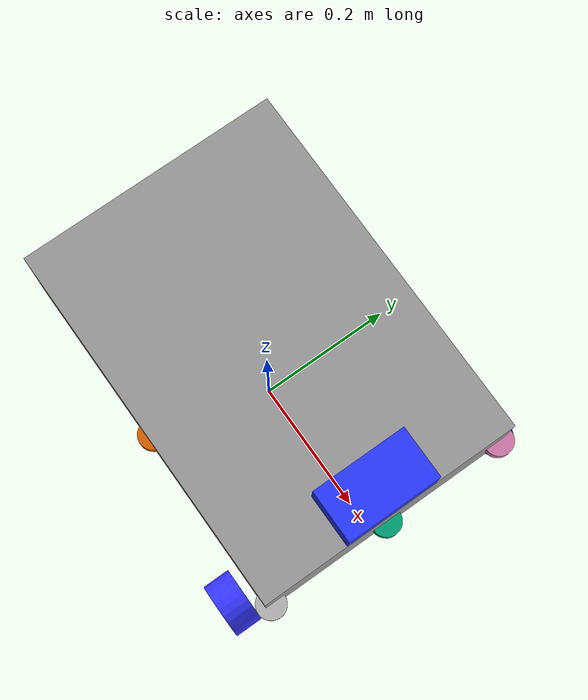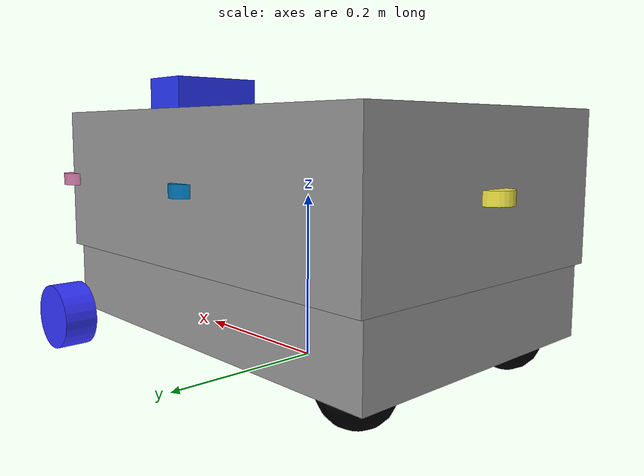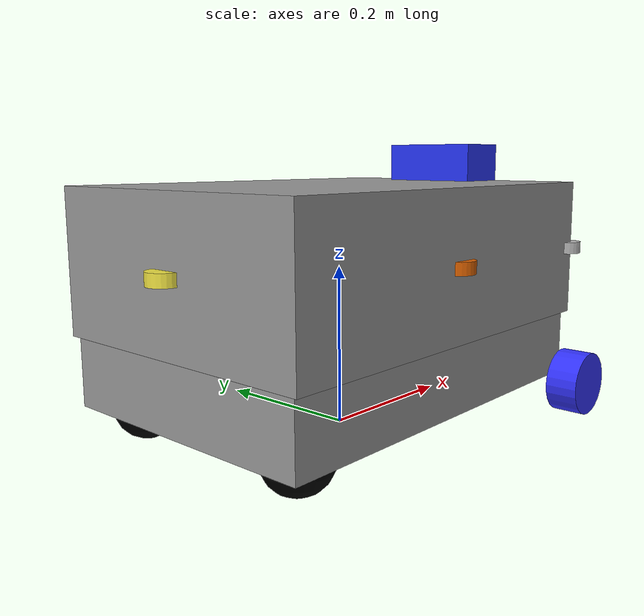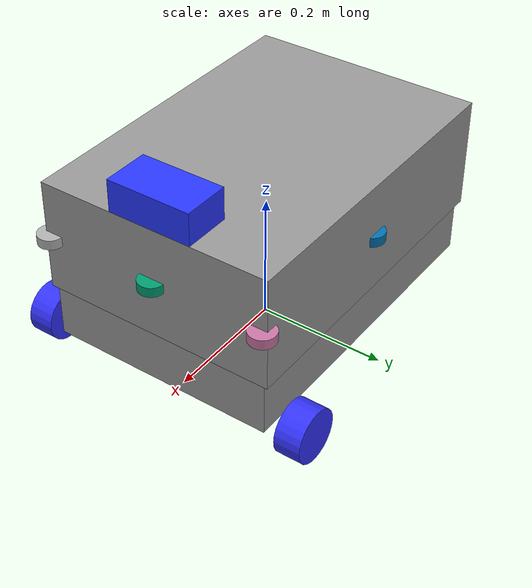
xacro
<?xml version="1.0"?>

<!-- URDF - Descrição do Robô em software para simulações (ou uso real), com uso da câmera como fonte de mapeamento -->

<robot xmlns:xacro="http://www.ros.org/wiki/xacro" name="Marmitron">
    <xacro:include filename="robot_design.xacro"/>
    <xacro:include filename="camera.xacro"/>
    <xacro:include filename="imu.xacro"/>
    <xacro:include filename="gps.xacro"/>
    <xacro:include filename="robot_controller.xacro"/> <!-- O local com as configurações para simulação -->
    <xacro:include filename="ultrasound.xacro"/>

    <xacro:ultrasound_sensor name="ultrasound_frente"   parent="chassiA" xyz="0.2578 0.0 0.0"    rpy="0 0 0"          topic="ultrasound/front"/>
    <xacro:ultrasound_sensor name="ultrasound_tras"     parent="chassiA" xyz="-0.2578 0.0 0.0"   rpy="0 0 ${pi}"      topic="ultrasound/rear"/>
    <xacro:ultrasound_sensor name="ultrasound_esquerda" parent="chassiA" xyz="0.0 0.175 0.0"  rpy="0 0 ${pi/2}"    topic="ultrasound/left"/>
    <xacro:ultrasound_sensor name="ultrasound_direita"  parent="chassiA" xyz="0.0 -0.175 0.0" rpy="0 0 ${-pi/2}"   topic="ultrasound/right"/>
    <xacro:ultrasound_sensor name="ultrasound_fe"       parent="chassiA" xyz="0.2578 0.175 0.0"  rpy="0 0 ${pi/4}"    topic="ultrasound/fe"/>
    <xacro:ultrasound_sensor name="ultrasound_fd"       parent="chassiA" xyz="0.2578 -0.175 0.0" rpy="0 0 ${-pi/4}"   topic="ultrasound/fd"/>

</robot>

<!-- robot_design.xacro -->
<!-- Corpo base do robô, suas juntas e localização de sensores -->
<!-- Dimensões são em metros -->
<robot xmlns:xacro="http://www.ros.org/wiki/xacro">
    <xacro:include filename="materials.xacro"/>
    <xacro:include filename="inertials.xacro"/>

    <!-- Chassi -->
    <xacro:property name="chassiB_x" value="0.507"/>
    <xacro:property name="chassiB_y" value="0.351"/>
    <xacro:property name="chassiB_z" value="0.104"/>    <!-- 0.1 (Parte A) + 0.15 (Parte B) -->

    <xacro:property name="chassiA_x" value="0.516"/>
    <xacro:property name="chassiA_y" value="0.366"/>
    <xacro:property name="chassiA_z" value="0.173"/>

    <!-- Massa do Chassi => (Estimativa Inicial) - 2*(RodasTraseira + RodasApoio) = 6 - 2*(0.055 + 0.05) = 5.79 kg, approx. 5.8 kg -->
    <xacro:property name="chassiB_massa" value="2"/>
    <xacro:property name="chassiA_massa" value="3.8"/>

    <xacro:property name="chassiB_origem" value="0 0 0"/>
    <xacro:property name="chassiB_joint_xyz" value="0 0 0.097"/>

    <xacro:property name="chassiA_origem" value="0 0 0"/>
    <xacro:property name="chassiA_joint_xyz" value="0 0 0.1185"/>

    <!-- Rodas dianteiras -->
    <xacro:property name="roda_raio" value="0.04"/>
    <xacro:property name="roda_comprimento" value="0.04"/>
    <xacro:property name="roda_massa" value="0.5"/>
    <xacro:property name="roda_y" value="0.215"/>
    <xacro:property name="roda_x" value="0.22"/>
    <xacro:property name="roda_z" value="-0.052"/>
    <xacro:property name="roda_mu1" value="0.65"/>
    <xacro:property name="roda_mu2" value="0.65"/>

    <!-- Roda(s) de apoio -->
    <xacro:property name="apoio_raio" value="0.04"/>
    <xacro:property name="apoio_massa" value="0.35"/>
    <xacro:property name="apoio_x" value="-0.2"/>
    <xacro:property name="apoio_y" value="0.125"/>
    <xacro:property name="apoio_z" value="-0.052"/>
    <xacro:property name="apoio_mu1" value="0.2"/>
    <xacro:property name="apoio_mu2" value="0.2"/>

    <link name="base_link"/>

    <!-- Chassi B -->
    <joint name="junta_chassiB" type="fixed">
        <parent link="base_link"/>
        <child link="chassiB"/>
        <origin xyz="${chassiB_joint_xyz}" rpy="0 0 0"/>
    </joint>

    <link name="chassiB">
        <visual>
            <origin xyz="${chassiB_origem}"/>
            <geometry>
                <box size="${chassiB_x} ${chassiB_y} ${chassiB_z}"/>
            </geometry>
            <material name="gray"/>
        </visual>
        <collision>
            <origin xyz="${chassiB_origem}"/>
            <geometry>
                <box size="${chassiB_x} ${chassiB_y} ${chassiB_z}"/>
            </geometry>
        </collision>
        <xacro:inertial_box mass="${chassiB_massa}" x="${chassiB_x}" y="${chassiB_y}" z="${chassiB_z}">
            <origin xyz="${chassiB_origem}" rpy="0 0 0"/>
        </xacro:inertial_box>
    </link>

    <!-- Chassi A -->
    <joint name="junta_chassiA" type="fixed">
        <parent link="chassiB"/>
        <child link="chassiA"/>
        <origin xyz="${chassiA_joint_xyz}" rpy="0 0 0"/>
    </joint>

    <link name="chassiA">
        <visual>
            <origin xyz="${chassiA_origem}"/>
            <geometry>
                <box size="${chassiA_x} ${chassiA_y} ${chassiA_z}"/>
            </geometry>
            <material name="gray"/>
        </visual>
        <collision>
            <origin xyz="${chassiA_origem}"/>
            <geometry>
                <box size="${chassiA_x} ${chassiA_y} ${chassiA_z}"/>
            </geometry>
        </collision>
        <xacro:inertial_box mass="${chassiA_massa}" x="${chassiA_x}" y="${chassiA_y}" z="${chassiA_z}">
            <origin xyz="${chassiA_origem}" rpy="0 0 0"/>
        </xacro:inertial_box>
    </link>

    <!-- Roda Esquerda Dianteira -->
    <joint name="roda_esquerda_joint" type="continuous">
        <parent link="chassiB"/>
        <child link="roda_esquerda"/>
        <origin xyz="${roda_x} ${roda_y} ${roda_z}" rpy="0 0 0"/>
        <axis xyz="0 1 0"/>
    </joint>

    <link name="roda_esquerda">
        <visual>
            <origin xyz="0 0 0" rpy="${pi/2} 0 0"/>
            <geometry><cylinder radius="${roda_raio}" length="${roda_comprimento}"/></geometry>
            <material name="blue"/>
        </visual>
        <collision>
            <origin xyz="0 0 0" rpy="${pi/2} 0 0"/>
            <geometry><cylinder radius="${roda_raio}" length="${roda_comprimento}"/></geometry>
        </collision>
        <xacro:inertial_cylinder mass="${roda_massa}" length="${roda_comprimento}" radius="${roda_raio}">
            <origin xyz="0 0 0" rpy="${pi/2} 0 0"/>
        </xacro:inertial_cylinder>
    </link>
    <gazebo reference="roda_esquerda">
        <mu1>${roda_mu1}</mu1>
        <mu2>${roda_mu2}</mu2>
    </gazebo>

    <!-- Roda Direita Dianteira -->
    <joint name="roda_direita_joint" type="continuous">
        <parent link="chassiB"/>
        <child link="roda_direita"/>
        <origin xyz="${roda_x} -${roda_y} ${roda_z}" rpy="0 0 0"/>
        <axis xyz="0 1 0"/>
    </joint>

    <link name="roda_direita">
        <visual>
            <origin xyz="0 0 0" rpy="${pi/2} 0 0"/>
            <geometry><cylinder radius="${roda_raio}" length="${roda_comprimento}"/></geometry>
            <material name="blue"/>
        </visual>
        <collision>
            <origin xyz="0 0 0" rpy="${pi/2} 0 0"/>
            <geometry><cylinder radius="${roda_raio}" length="${roda_comprimento}"/></geometry>
        </collision>
        <xacro:inertial_cylinder mass="${roda_massa}" length="${roda_comprimento}" radius="${roda_raio}">
            <origin xyz="0 0 0" rpy="${pi/2} 0 0"/>
        </xacro:inertial_cylinder>
    </link>
    <gazebo reference="roda_direita">
        <mu1>${roda_mu1}</mu1>
        <mu2>${roda_mu2}</mu2>
    </gazebo>

    <!-- Rodas de Apoio -->

    <!-- Roda Esquerda -->
    <joint name="roda_boba1_joint" type="fixed">
        <parent link="chassiB"/>
        <child link="roda_boba1"/>
        <origin xyz="${apoio_x} ${apoio_y} ${apoio_z}"/>
    </joint>

    <link name="roda_boba1">

        <visual>
            <geometry>
                <sphere radius="${apoio_raio}"/>
            </geometry>
            <material name="black"/>
        </visual>

        <collision>
            <geometry>
                <sphere radius="${apoio_raio}"/>
            </geometry>
        </collision>

        <xacro:inertial_sphere mass="${apoio_massa}" radius="${apoio_raio}">
            <origin xyz="0 0 0" rpy="0 0 0"/>
        </xacro:inertial_sphere>

    </link>

    <!-- Roda Direita -->
    <joint name="roda_boba2_joint" type="fixed">
        <parent link="chassiB"/>
        <child link="roda_boba2"/>
        <origin xyz="${apoio_x} -${apoio_y} ${apoio_z}"/>
    </joint>

    <link name="roda_boba2">

        <visual>
            <geometry>
                <sphere radius="${apoio_raio}"/>
            </geometry>
            <material name="black"/>
        </visual>

        <collision>
            <geometry>
                <sphere radius="${apoio_raio}"/>
            </geometry>
        </collision>

        <xacro:inertial_sphere mass="${apoio_massa}" radius="${apoio_raio}">
            <origin xyz="0 0 0" rpy="0 0 0"/>
        </xacro:inertial_sphere>

    </link>

    <gazebo reference="roda_boba1">
        <self_collide>false</self_collide>
        <mu1>${apoio_mu1}</mu1>
        <mu2>${apoio_mu2}</mu2>
    </gazebo>

    <gazebo reference="roda_boba2">
        <self_collide>false</self_collide>
        <mu1>${apoio_mu1}</mu1>
        <mu2>${apoio_mu2}</mu2>
    </gazebo>

</robot>

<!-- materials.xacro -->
<!-- Cores para melhor visualização na simulação e no Rviz-->

<robot xmlns:xacro="http://www.ros.org/wiki/xacro">

    <material name="white">
        <color rgba="1 1 1 1"/>
    </material>

    <material name="blue">
        <color rgba="0.2 0.2 1 1"/>
    </material>

    <material name="black">
        <color rgba="0 0 0 1"/>
    </material>

    <material name="red">
        <color rgba="1 0.2 0.2 1"/>
    </material>

    <material name="gray">
        <color rgba="0.6 0.6 0.6 1"/>
    </material>

</robot>

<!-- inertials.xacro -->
<robot xmlns:xacro="http://www.ros.org/wiki/xacro" >

    <!-- Modelos obtidos pelo site https://en.wikipedia.org/wiki/List_of_moments_of_inertia -->

    <xacro:macro name="inertial_sphere" params="mass radius *origin">
        <inertial>
            <xacro:insert_block name="origin"/>
            <mass value="${mass}" />
            <inertia ixx="${(2/5) * mass * (radius*radius)}" ixy="0.0" ixz="0.0"
                    iyy="${(2/5) * mass * (radius*radius)}" iyz="0.0"
                    izz="${(2/5) * mass * (radius*radius)}" />
        </inertial>
    </xacro:macro>

    <xacro:macro name="inertial_box" params="mass x y z *origin">
        <inertial>
            <xacro:insert_block name="origin"/>
            <mass value="${mass}" />
            <inertia ixx="${(1/12) * mass * (y*y+z*z)}" ixy="0.0" ixz="0.0"
                    iyy="${(1/12) * mass * (x*x+z*z)}" iyz="0.0"
                    izz="${(1/12) * mass * (x*x+y*y)}" />
        </inertial>
    </xacro:macro>

    <xacro:macro name="inertial_cylinder" params="mass length radius *origin">
        <inertial>
            <xacro:insert_block name="origin"/>
            <mass value="${mass}" />
            <inertia ixx="${(1/12) * mass * (3*radius*radius + length*length)}" ixy="0.0" ixz="0.0"
                    iyy="${(1/12) * mass * (3*radius*radius + length*length)}" iyz="0.0"
                    izz="${(1/2) * mass * (radius*radius)}" />
        </inertial>
    </xacro:macro>
</robot>

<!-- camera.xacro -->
<robot xmlns:xacro="http://www.ros.org/wiki/xacro">
    <xacro:include filename="inertials.xacro"/>

    <xacro:property name="mass" value="0.05"/>
    <xacro:property name="x" value="0.072"/>
    <xacro:property name="y" value="0.13"/>
    <xacro:property name="z" value="0.063"/>

    <xacro:property name="name" value="mono_camera"/>

    <!-- base_link <- IMU ; IMU <- camera --> <!-- No robô em si, as transformadas devem ocorrer dessa forma, pois os eixos do IMU não coincidem com os eixos de referência que o ROS2 e o Nav2 usam -->

    <!-- Descrição da câmera -->

    <link name="${name}_link">

        <visual>
            <origin xyz="-0.036 0 -0.015" rpy="0 0 0"/>
            <geometry>
                <box size="${x} ${y} ${z}"/>
            </geometry>
            <material name="purple">
                <color rgba="0.16 0.22 1.0 1.0 "/>
            </material>
        </visual>

        <collision>
            <origin xyz="-0.036 0 -0.0015" rpy="0 0 0"/>
            <geometry>
                <box size="${x} ${y} ${z}"/>
            </geometry>
        </collision>

        <xacro:inertial_box mass="${mass}" x="${x}" y="${y}" z="${z}">
            <origin xyz="-0.036 0 -0.0015" rpy="0 0 0"/>
        </xacro:inertial_box>
    </link>

    <joint name="${name}_joint" type="fixed">
        <parent link="chassiA"/>
        <child link="${name}_link"/>
        <origin xyz="0.2577 0 0.1195" rpy="0 0 0"/>
    </joint>

    <!-- Descrição do comportamento da câmera no Gazebo (somente para fins de simulação) -->
    <!-- Comentar para um robô real -->

    <gazebo reference="${name}_link">
        <sensor name="${name}_sensor" type="camera">
            <visualize>true</visualize>
            <update_rate>30.0</update_rate>
            <camera name="${name}">
                <horizontal_fov>1.047</horizontal_fov>
                <image>
                    <width>1920</width>
                    <height>1080</height>
                    <format>R8G8B8</format>
                </image>
                <clip>
                    <near>0.1</near> <!-- Ignora o que estiver a menos de 0,1 metros -->
                    <far>4.0</far> <!-- Ignora o que estiver a mais de 4 metros -->
                </clip>
            </camera>
            <plugin name="camera_controller" filename="libgazebo_ros_camera.so">
                <alwaysOn>true</alwaysOn>
                <updateRate>0.0</updateRate>
                <frame_name>${name}_frame</frame_name>
                <pointCloudCutoff>0.5</pointCloudCutoff>
                <pointCloudCutoffMax>3.0</pointCloudCutoffMax>
                <distortionK1>0</distortionK1>
                <distortionK2>0</distortionK2>
                <distortionK3>0</distortionK3>
                <distortionT1>0</distortionT1>
                <distortionT2>0</distortionT2>
                <CxPrime>0</CxPrime>
                <Cx>0</Cx>
                <Cy>0</Cy>
                <focalLength>0</focalLength>
                <hackBaseline>0.05</hackBaseline> <!-- Essa baseline é a distância entre lente. Simula uma câmera monocular -->
            </plugin>
        </sensor>
    </gazebo>

</robot>

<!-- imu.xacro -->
<robot xmlns:xacro="http://www.ros.org/wiki/xacro">

<!-- Esse arquivo descreve como o IMU foi tratado na simulação -->

    <xacro:property name="imu_x" value="0.15"/>
    <xacro:property name="imu_y" value="0.0"/>
    <xacro:property name="imu_z" value="0.075"/>

    <xacro:property name="imu_update_rate" value="100"/>
    <xacro:property name="imu_gyro_stddev" value="0.009"/>
    <xacro:property name="imu_accel_stddev" value="0.021"/>
    <xacro:property name="imu_topic" value="/demo/imu"/>

    <joint name="imu_joint" type="fixed">
        <parent link="chassiB"/>
        <child link="imu_frame"/>
        <origin xyz="${imu_x} ${imu_y} ${imu_z}" rpy="0 0 0"/>
    </joint>

    <link name="imu_frame">
        <inertial>
            <mass value="0.01"/>
            <inertia ixx="0.000001" ixy="0" ixz="0"
                     iyy="0.000001" iyz="0"
                     izz="0.000001"/>
        </inertial>
    </link>

</robot>

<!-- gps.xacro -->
<robot xmlns:xacro="http://www.ros.org/wiki/xacro">

    <link name="gps_link">
    <inertial>
        <mass value="0.001"/>
        <inertia ixx="0.0001" ixy="0.0" ixz="0.0" iyy="0.0001" iyz="0.0" izz="0.0001"/>
    </inertial>
    <visual>
        <geometry>
            <box size="0.03 0.03 0.03"/>
        </geometry>
        <material name="red"/>
    </visual>
</link>

<!-- GPS Joint (fixed to base_link) -->
<joint name="gps_joint" type="fixed">
    <parent link="base_link"/>
    <child link="gps_link"/>
    <origin xyz="0 0 0.15" rpy="0 0 0"/>
</joint>

</robot>

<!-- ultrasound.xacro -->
<robot xmlns:xacro="http://www.ros.org/wiki/xacro">
    <xacro:macro name="ultrasound_sensor" params="name parent xyz rpy topic">

        <link name="${name}_link">
            <visual>
                <geometry><cylinder length="0.015" radius="0.02"/></geometry>
            </visual>
            <inertial>
                <mass value="0.005"/>
                <origin xyz="0 0 0" rpy="0 0 0"/>
                <inertia ixx="1e-7" ixy="0" ixz="0" iyy="1e-7" iyz="0" izz="1e-7"/>
            </inertial>
        </link>

        <joint name="${name}_joint" type="fixed">
            <parent link="${parent}"/>
            <child link="${name}_link"/>
            <origin xyz="${xyz}" rpy="${rpy}"/>
        </joint>

    </xacro:macro>
</robot>
